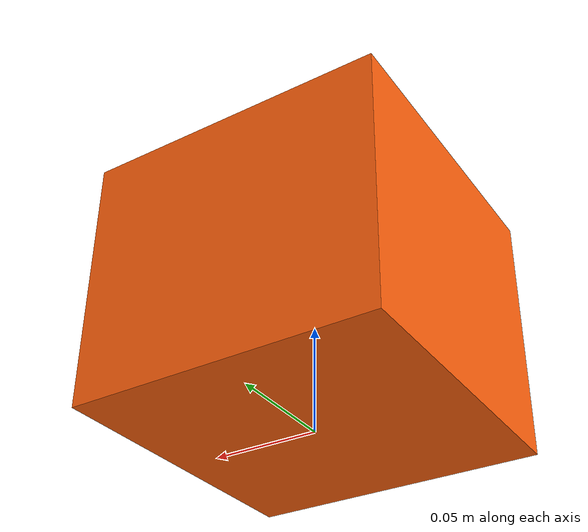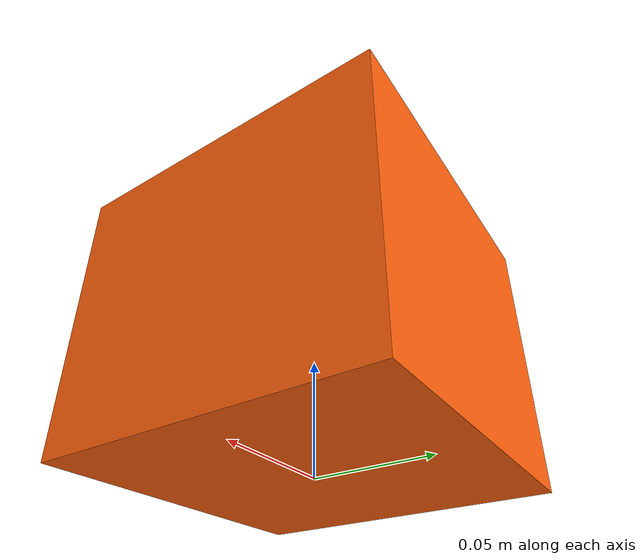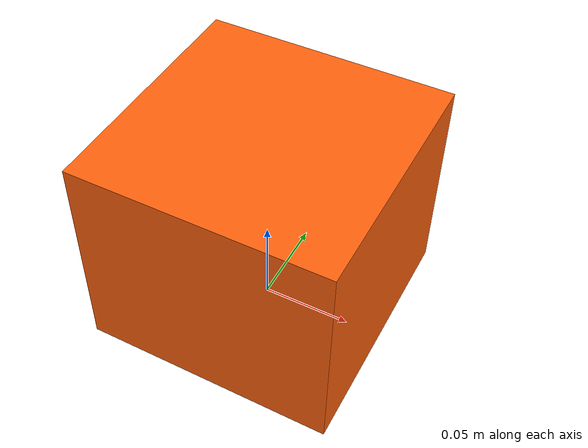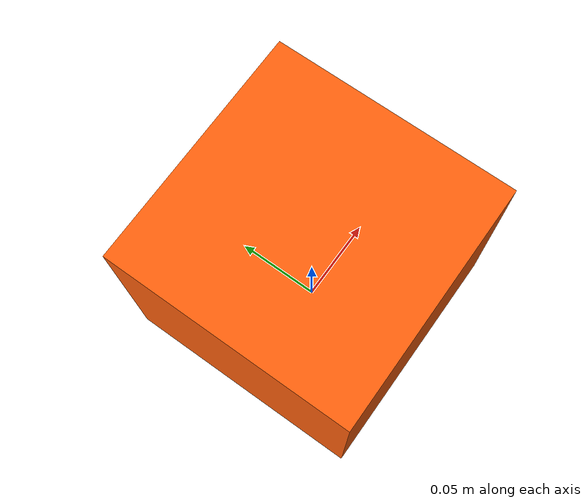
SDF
<?xml version="1.0"?>
<sdf version="1.10">
  <model name="pick_crate">
    <static>false</static>
    <pose>0 0 0.06 0 0 0</pose>
    <link name="crate_link">
      <inertial>
        <pose>0 0 0 0 0 0</pose>
        <mass>0.25</mass>
        <inertia>
          <ixx>0.0008</ixx>
          <iyy>0.0008</iyy>
          <izz>0.0008</izz>
          <ixy>0</ixy>
          <ixz>0</ixz>
          <iyz>0</iyz>
        </inertia>
      </inertial>
      <collision name="crate_collision">
        <geometry>
          <box><size>0.14 0.14 0.12</size></box>
        </geometry>
        <surface>
          <friction>
            <ode>
              <mu>1.2</mu>
              <mu2>1.2</mu2>
            </ode>
          </friction>
        </surface>
      </collision>
      <visual name="crate_visual">
        <geometry>
          <box><size>0.14 0.14 0.12</size></box>
        </geometry>
        <material>
          <ambient>0.95 0.35 0.05 1</ambient>
          <diffuse>1.0 0.38 0.05 1</diffuse>
          <specular>0.3 0.3 0.3 1</specular>
        </material>
      </visual>
    </link>
  </model>
</sdf>
